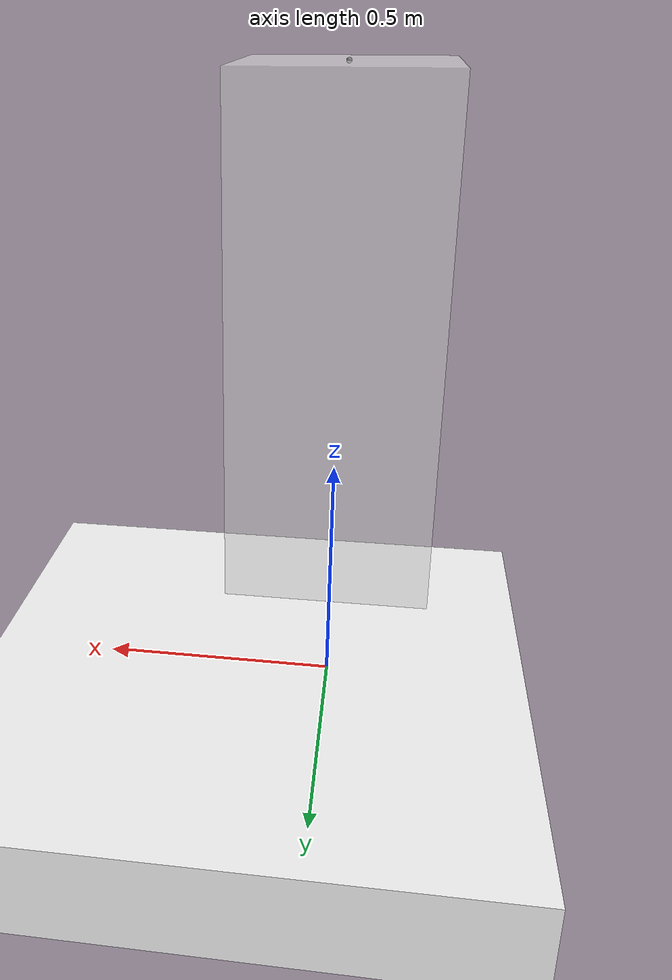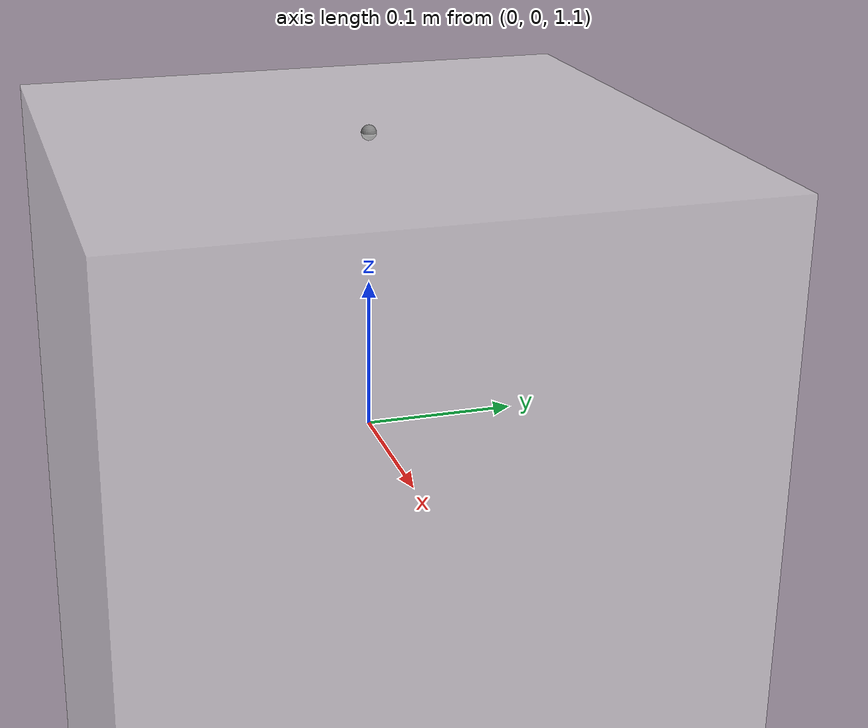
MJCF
<mujoco>
    <worldbody>

        <geom name="floor" type="box" size="2 2 0.1" rgba="1 1 5 1"/>
        <body name="caja" pos="0 0 0.8" euler="0 0 0">
            <inertial pos="0 0 0" mass="1" diaginertia="1 1 1"/>
            <geom name="caja" type="box" size="0.2 0.2 0.5" rgba="5 1 1 0.5"/>
            <site name="top_box" pos="0 0 0.5" euler="0 180 0"/>
            <freejoint name="q0"/>
        </body>
    </worldbody>

    <sensor>
        <rangefinder name="prx" site="top_box"/>
    </sensor>

</mujoco>
